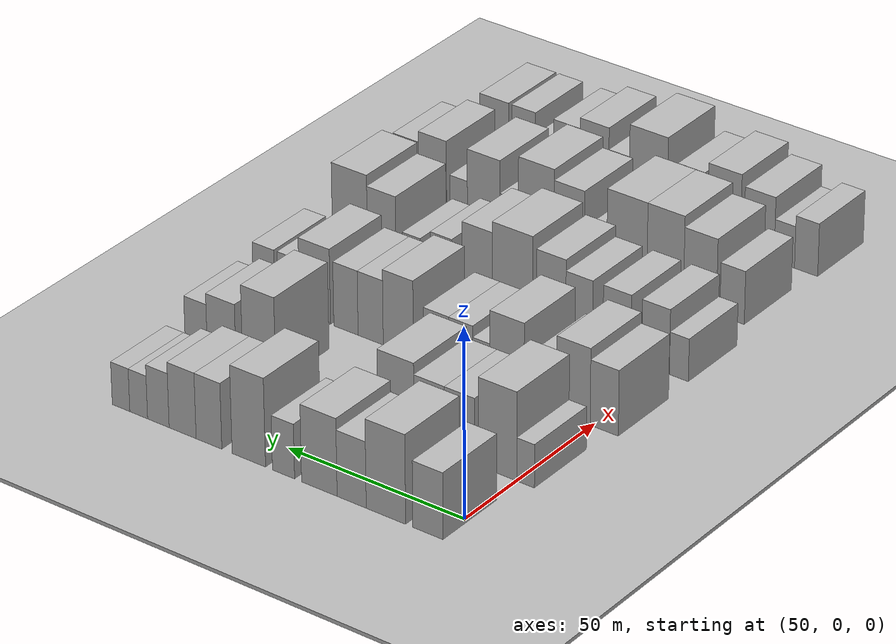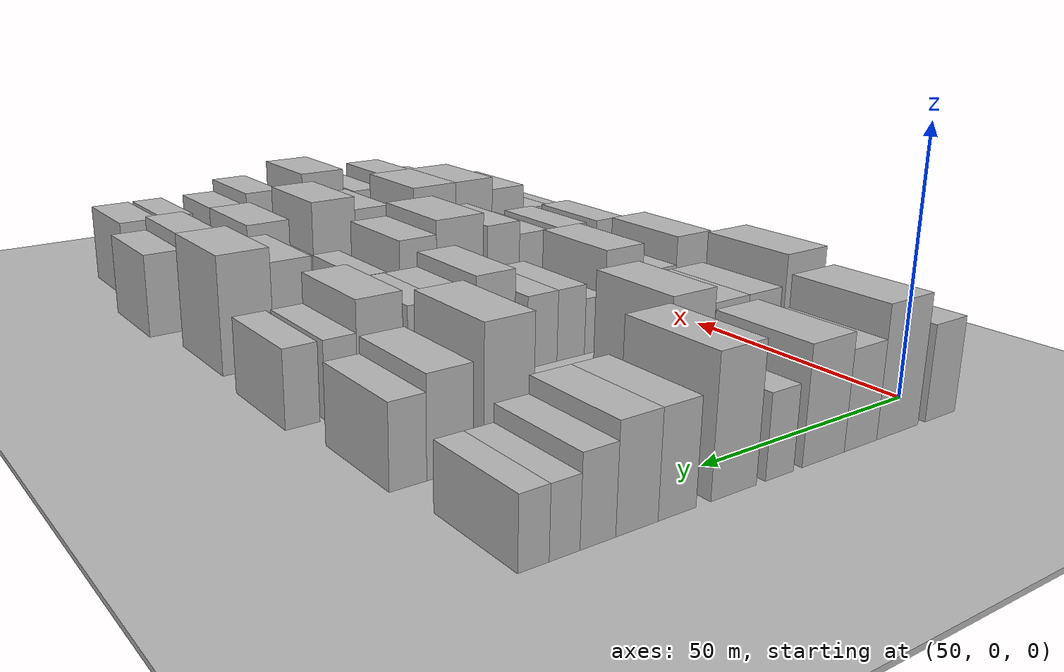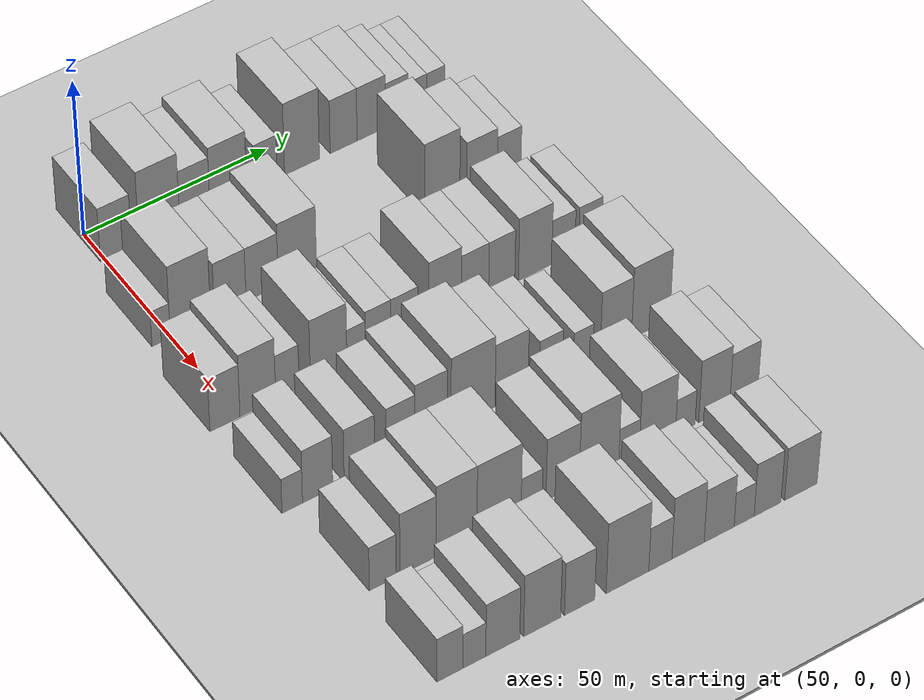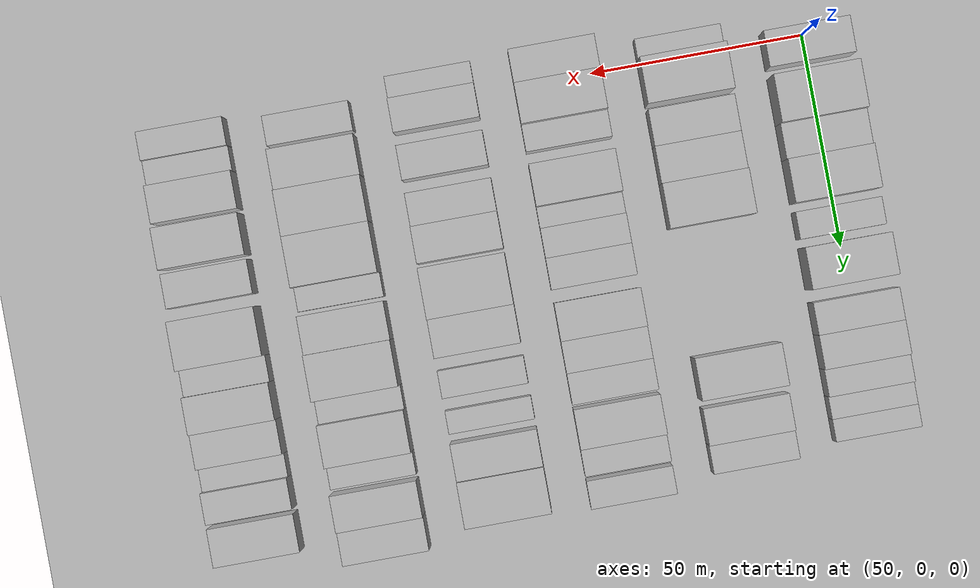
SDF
<sdf version="1.6">
 <world name="default">
  <include><name>ground_plane_1</name><uri>model://HANNAS_ground_plane</uri></include>
  <include>
   <name>ground_plane_2</name>
   <uri>model://HANNAS_ground_plane</uri>
   <pose>100 0 0  0 0 0</pose>
  </include>
  <model name="building_56">
   <static>1</static>
   <pose>50.0000 2.6912 0 0.000000 0.000000 0.000000</pose>
   <link name="link">
    <pose>0 0 9.00 0 0 0</pose>
    <collision name="collision"><geometry><box><size>20.0000 8.4081 18.0000</size></box></geometry></collision>
    <visual name="visual">
     <cast_shadows>0</cast_shadows>
     <geometry><box><size>20.0000 8.4081 18.0000</size></box></geometry>
     <material>
      <script>
       <uri>model://HANNAS_wall/materials/scripts</uri>
       <uri>model://HANNAS_wall/materials/textures</uri>
       <name>vrc/HANNAS_wall</name>
      </script>
     </material>
    </visual>
   </link>
  </model>
  <model name="building_57">
   <static>1</static>
   <pose>50.0000 14.4194 0 0.000000 0.000000 0.000000</pose>
   <link name="link">
    <pose>0 0 12.00 0 0 0</pose>
    <collision name="collision"><geometry><box><size>20.0000 11.0483 24.0000</size></box></geometry></collision>
    <visual name="visual">
     <cast_shadows>0</cast_shadows>
     <geometry><box><size>20.0000 11.0483 24.0000</size></box></geometry>
     <material>
      <script>
       <uri>model://HANNAS_wall/materials/scripts</uri>
       <uri>model://HANNAS_wall/materials/textures</uri>
       <name>vrc/HANNAS_wall</name>
      </script>
     </material>
    </visual>
   </link>
  </model>
  <model name="building_58">
   <static>1</static>
   <pose>50.0000 24.0568 0 0.000000 0.000000 0.000000</pose>
   <link name="link">
    <pose>0 0 9.00 0 0 0</pose>
    <collision name="collision"><geometry><box><size>20.0000 8.2267 18.0000</size></box></geometry></collision>
    <visual name="visual">
     <cast_shadows>0</cast_shadows>
     <geometry><box><size>20.0000 8.2267 18.0000</size></box></geometry>
     <material>
      <script>
       <uri>model://HANNAS_wall/materials/scripts</uri>
       <uri>model://HANNAS_wall/materials/textures</uri>
       <name>vrc/HANNAS_wall</name>
      </script>
     </material>
    </visual>
   </link>
  </model>
  <model name="building_59">
   <static>1</static>
   <pose>50.0000 33.2334 0 0.000000 0.000000 0.000000</pose>
   <link name="link">
    <pose>0 0 10.50 0 0 0</pose>
    <collision name="collision"><geometry><box><size>20.0000 10.1264 21.0000</size></box></geometry></collision>
    <visual name="visual">
     <cast_shadows>0</cast_shadows>
     <geometry><box><size>20.0000 10.1264 21.0000</size></box></geometry>
     <material>
      <script>
       <uri>model://HANNAS_wall/materials/scripts</uri>
       <uri>model://HANNAS_wall/materials/textures</uri>
       <name>vrc/HANNAS_wall</name>
      </script>
     </material>
    </visual>
   </link>
  </model>
  <model name="building_60">
   <static>1</static>
   <pose>50.0000 43.4726 0 0.000000 0.000000 0.000000</pose>
   <link name="link">
    <pose>0 0 7.50 0 0 0</pose>
    <collision name="collision"><geometry><box><size>20.0000 6.3521 15.0000</size></box></geometry></collision>
    <visual name="visual">
     <cast_shadows>0</cast_shadows>
     <geometry><box><size>20.0000 6.3521 15.0000</size></box></geometry>
     <material>
      <script>
       <uri>model://HANNAS_wall/materials/scripts</uri>
       <uri>model://HANNAS_wall/materials/textures</uri>
       <name>vrc/HANNAS_wall</name>
      </script>
     </material>
    </visual>
   </link>
  </model>
  <model name="building_61">
   <static>1</static>
   <pose>50.0000 53.4986 0 0.000000 0.000000 0.000000</pose>
   <link name="link">
    <pose>0 0 12.00 0 0 0</pose>
    <collision name="collision"><geometry><box><size>20.0000 9.6999 24.0000</size></box></geometry></collision>
    <visual name="visual">
     <cast_shadows>0</cast_shadows>
     <geometry><box><size>20.0000 9.6999 24.0000</size></box></geometry>
     <material>
      <script>
       <uri>model://HANNAS_wall/materials/scripts</uri>
       <uri>model://HANNAS_wall/materials/textures</uri>
       <name>vrc/HANNAS_wall</name>
      </script>
     </material>
    </visual>
   </link>
  </model>
  <model name="building_62">
   <static>1</static>
   <pose>50.0000 65.1125 0 0.000000 0.000000 0.000000</pose>
   <link name="link">
    <pose>0 0 9.00 0 0 0</pose>
    <collision name="collision"><geometry><box><size>20.0000 7.5279 18.0000</size></box></geometry></collision>
    <visual name="visual">
     <cast_shadows>0</cast_shadows>
     <geometry><box><size>20.0000 7.5279 18.0000</size></box></geometry>
     <material>
      <script>
       <uri>model://HANNAS_wall/materials/scripts</uri>
       <uri>model://HANNAS_wall/materials/textures</uri>
       <name>vrc/HANNAS_wall</name>
      </script>
     </material>
    </visual>
   </link>
  </model>
  <model name="building_63">
   <static>1</static>
   <pose>50.0000 72.8507 0 0.000000 0.000000 0.000000</pose>
   <link name="link">
    <pose>0 0 9.00 0 0 0</pose>
    <collision name="collision"><geometry><box><size>20.0000 7.9485 18.0000</size></box></geometry></collision>
    <visual name="visual">
     <cast_shadows>0</cast_shadows>
     <geometry><box><size>20.0000 7.9485 18.0000</size></box></geometry>
     <material>
      <script>
       <uri>model://HANNAS_wall/materials/scripts</uri>
       <uri>model://HANNAS_wall/materials/textures</uri>
       <name>vrc/HANNAS_wall</name>
      </script>
     </material>
    </visual>
   </link>
  </model>
  <model name="building_64">
   <static>1</static>
   <pose>50.0000 80.0263 0 0.000000 0.000000 0.000000</pose>
   <link name="link">
    <pose>0 0 7.50 0 0 0</pose>
    <collision name="collision"><geometry><box><size>20.0000 6.4027 15.0000</size></box></geometry></collision>
    <visual name="visual">
     <cast_shadows>0</cast_shadows>
     <geometry><box><size>20.0000 6.4027 15.0000</size></box></geometry>
     <material>
      <script>
       <uri>model://HANNAS_wall/materials/scripts</uri>
       <uri>model://HANNAS_wall/materials/textures</uri>
       <name>vrc/HANNAS_wall</name>
      </script>
     </material>
    </visual>
   </link>
  </model>
  <model name="building_65">
   <static>1</static>
   <pose>50.0000 85.8748 0 0.000000 0.000000 0.000000</pose>
   <link name="link">
    <pose>0 0 6.00 0 0 0</pose>
    <collision name="collision"><geometry><box><size>20.0000 5.2944 12.0000</size></box></geometry></collision>
    <visual name="visual">
     <cast_shadows>0</cast_shadows>
     <geometry><box><size>20.0000 5.2944 12.0000</size></box></geometry>
     <material>
      <script>
       <uri>model://HANNAS_wall/materials/scripts</uri>
       <uri>model://HANNAS_wall/materials/textures</uri>
       <name>vrc/HANNAS_wall</name>
      </script>
     </material>
    </visual>
   </link>
  </model>
  <model name="building_66">
   <static>1</static>
   <pose>50.0000 91.1388 0 0.000000 0.000000 0.000000</pose>
   <link name="link">
    <pose>0 0 6.00 0 0 0</pose>
    <collision name="collision"><geometry><box><size>20.0000 5.2335 12.0000</size></box></geometry></collision>
    <visual name="visual">
     <cast_shadows>0</cast_shadows>
     <geometry><box><size>20.0000 5.2335 12.0000</size></box></geometry>
     <material>
      <script>
       <uri>model://HANNAS_wall/materials/scripts</uri>
       <uri>model://HANNAS_wall/materials/textures</uri>
       <name>vrc/HANNAS_wall</name>
      </script>
     </material>
    </visual>
   </link>
  </model>
  <model name="building_170">
   <static>1</static>
   <pose>79.0000 -2.8631 0 0.000000 0.000000 0.000000</pose>
   <link name="link">
    <pose>0 0 6.00 0 0 0</pose>
    <collision name="collision"><geometry><box><size>20.0000 4.8949 12.0000</size></box></geometry></collision>
    <visual name="visual">
     <cast_shadows>0</cast_shadows>
     <geometry><box><size>20.0000 4.8949 12.0000</size></box></geometry>
     <material>
      <script>
       <uri>model://HANNAS_wall/materials/scripts</uri>
       <uri>model://HANNAS_wall/materials/textures</uri>
       <name>vrc/HANNAS_wall</name>
      </script>
     </material>
    </visual>
   </link>
  </model>
  <model name="building_171">
   <static>1</static>
   <pose>79.0000 4.9696 0 0.000000 0.000000 0.000000</pose>
   <link name="link">
    <pose>0 0 12.00 0 0 0</pose>
    <collision name="collision"><geometry><box><size>20.0000 10.7706 24.0000</size></box></geometry></collision>
    <visual name="visual">
     <cast_shadows>0</cast_shadows>
     <geometry><box><size>20.0000 10.7706 24.0000</size></box></geometry>
     <material>
      <script>
       <uri>model://HANNAS_wall/materials/scripts</uri>
       <uri>model://HANNAS_wall/materials/textures</uri>
       <name>vrc/HANNAS_wall</name>
      </script>
     </material>
    </visual>
   </link>
  </model>
  <model name="building_172">
   <static>1</static>
   <pose>79.0000 15.6167 0 0.000000 0.000000 0.000000</pose>
   <link name="link">
    <pose>0 0 9.00 0 0 0</pose>
    <collision name="collision"><geometry><box><size>20.0000 8.5237 18.0000</size></box></geometry></collision>
    <visual name="visual">
     <cast_shadows>0</cast_shadows>
     <geometry><box><size>20.0000 8.5237 18.0000</size></box></geometry>
     <material>
      <script>
       <uri>model://HANNAS_wall/materials/scripts</uri>
       <uri>model://HANNAS_wall/materials/textures</uri>
       <name>vrc/HANNAS_wall</name>
      </script>
     </material>
    </visual>
   </link>
  </model>
  <model name="building_173">
   <static>1</static>
   <pose>79.0000 24.2180 0 0.000000 0.000000 0.000000</pose>
   <link name="link">
    <pose>0 0 9.00 0 0 0</pose>
    <collision name="collision"><geometry><box><size>20.0000 8.6790 18.0000</size></box></geometry></collision>
    <visual name="visual">
     <cast_shadows>0</cast_shadows>
     <geometry><box><size>20.0000 8.6790 18.0000</size></box></geometry>
     <material>
      <script>
       <uri>model://HANNAS_wall/materials/scripts</uri>
       <uri>model://HANNAS_wall/materials/textures</uri>
       <name>vrc/HANNAS_wall</name>
      </script>
     </material>
    </visual>
   </link>
  </model>
  <model name="building_174">
   <static>1</static>
   <pose>79.0000 33.7598 0 0.000000 0.000000 0.000000</pose>
   <link name="link">
    <pose>0 0 10.50 0 0 0</pose>
    <collision name="collision"><geometry><box><size>20.0000 10.4047 21.0000</size></box></geometry></collision>
    <visual name="visual">
     <cast_shadows>0</cast_shadows>
     <geometry><box><size>20.0000 10.4047 21.0000</size></box></geometry>
     <material>
      <script>
       <uri>model://HANNAS_wall/materials/scripts</uri>
       <uri>model://HANNAS_wall/materials/textures</uri>
       <name>vrc/HANNAS_wall</name>
      </script>
     </material>
    </visual>
   </link>
  </model>
  <model name="building_175">
   <static>1</static>
   <pose>79.0000 73.6749 0 0.000000 0.000000 0.000000</pose>
   <link name="link">
    <pose>0 0 12.00 0 0 0</pose>
    <collision name="collision"><geometry><box><size>20.0000 9.8085 24.0000</size></box></geometry></collision>
    <visual name="visual">
     <cast_shadows>0</cast_shadows>
     <geometry><box><size>20.0000 9.8085 24.0000</size></box></geometry>
     <material>
      <script>
       <uri>model://HANNAS_wall/materials/scripts</uri>
       <uri>model://HANNAS_wall/materials/textures</uri>
       <name>vrc/HANNAS_wall</name>
      </script>
     </material>
    </visual>
   </link>
  </model>
  <model name="building_176">
   <static>1</static>
   <pose>79.0000 84.8668 0 0.000000 0.000000 0.000000</pose>
   <link name="link">
    <pose>0 0 9.00 0 0 0</pose>
    <collision name="collision"><geometry><box><size>20.0000 8.5753 18.0000</size></box></geometry></collision>
    <visual name="visual">
     <cast_shadows>0</cast_shadows>
     <geometry><box><size>20.0000 8.5753 18.0000</size></box></geometry>
     <material>
      <script>
       <uri>model://HANNAS_wall/materials/scripts</uri>
       <uri>model://HANNAS_wall/materials/textures</uri>
       <name>vrc/HANNAS_wall</name>
      </script>
     </material>
    </visual>
   </link>
  </model>
  <model name="building_177">
   <static>1</static>
   <pose>79.0000 92.4862 0 0.000000 0.000000 0.000000</pose>
   <link name="link">
    <pose>0 0 7.50 0 0 0</pose>
    <collision name="collision"><geometry><box><size>20.0000 6.6636 15.0000</size></box></geometry></collision>
    <visual name="visual">
     <cast_shadows>0</cast_shadows>
     <geometry><box><size>20.0000 6.6636 15.0000</size></box></geometry>
     <material>
      <script>
       <uri>model://HANNAS_wall/materials/scripts</uri>
       <uri>model://HANNAS_wall/materials/textures</uri>
       <name>vrc/HANNAS_wall</name>
      </script>
     </material>
    </visual>
   </link>
  </model>
  <model name="building_279">
   <static>1</static>
   <pose>108.0000 -3.8866 0 0.000000 0.000000 0.000000</pose>
   <link name="link">
    <pose>0 0 9.00 0 0 0</pose>
    <collision name="collision"><geometry><box><size>20.0000 7.9030 18.0000</size></box></geometry></collision>
    <visual name="visual">
     <cast_shadows>0</cast_shadows>
     <geometry><box><size>20.0000 7.9030 18.0000</size></box></geometry>
     <material>
      <script>
       <uri>model://HANNAS_wall/materials/scripts</uri>
       <uri>model://HANNAS_wall/materials/textures</uri>
       <name>vrc/HANNAS_wall</name>
      </script>
     </material>
    </visual>
   </link>
  </model>
  <model name="building_280">
   <static>1</static>
   <pose>108.0000 4.7956 0 0.000000 0.000000 0.000000</pose>
   <link name="link">
    <pose>0 0 10.50 0 0 0</pose>
    <collision name="collision"><geometry><box><size>20.0000 9.4615 21.0000</size></box></geometry></collision>
    <visual name="visual">
     <cast_shadows>0</cast_shadows>
     <geometry><box><size>20.0000 9.4615 21.0000</size></box></geometry>
     <material>
      <script>
       <uri>model://HANNAS_wall/materials/scripts</uri>
       <uri>model://HANNAS_wall/materials/textures</uri>
       <name>vrc/HANNAS_wall</name>
      </script>
     </material>
    </visual>
   </link>
  </model>
  <model name="building_281">
   <static>1</static>
   <pose>108.0000 12.6495 0 0.000000 0.000000 0.000000</pose>
   <link name="link">
    <pose>0 0 7.50 0 0 0</pose>
    <collision name="collision"><geometry><box><size>20.0000 6.2461 15.0000</size></box></geometry></collision>
    <visual name="visual">
     <cast_shadows>0</cast_shadows>
     <geometry><box><size>20.0000 6.2461 15.0000</size></box></geometry>
     <material>
      <script>
       <uri>model://HANNAS_wall/materials/scripts</uri>
       <uri>model://HANNAS_wall/materials/textures</uri>
       <name>vrc/HANNAS_wall</name>
      </script>
     </material>
    </visual>
   </link>
  </model>
  <model name="building_282">
   <static>1</static>
   <pose>108.0000 23.6721 0 0.000000 0.000000 0.000000</pose>
   <link name="link">
    <pose>0 0 10.50 0 0 0</pose>
    <collision name="collision"><geometry><box><size>20.0000 9.7992 21.0000</size></box></geometry></collision>
    <visual name="visual">
     <cast_shadows>0</cast_shadows>
     <geometry><box><size>20.0000 9.7992 21.0000</size></box></geometry>
     <material>
      <script>
       <uri>model://HANNAS_wall/materials/scripts</uri>
       <uri>model://HANNAS_wall/materials/textures</uri>
       <name>vrc/HANNAS_wall</name>
      </script>
     </material>
    </visual>
   </link>
  </model>
  <model name="building_283">
   <static>1</static>
   <pose>108.0000 31.0412 0 0.000000 0.000000 0.000000</pose>
   <link name="link">
    <pose>0 0 6.00 0 0 0</pose>
    <collision name="collision"><geometry><box><size>20.0000 4.9390 12.0000</size></box></geometry></collision>
    <visual name="visual">
     <cast_shadows>0</cast_shadows>
     <geometry><box><size>20.0000 4.9390 12.0000</size></box></geometry>
     <material>
      <script>
       <uri>model://HANNAS_wall/materials/scripts</uri>
       <uri>model://HANNAS_wall/materials/textures</uri>
       <name>vrc/HANNAS_wall</name>
      </script>
     </material>
    </visual>
   </link>
  </model>
  <model name="building_284">
   <static>1</static>
   <pose>108.0000 36.9808 0 0.000000 0.000000 0.000000</pose>
   <link name="link">
    <pose>0 0 7.50 0 0 0</pose>
    <collision name="collision"><geometry><box><size>20.0000 6.9402 15.0000</size></box></geometry></collision>
    <visual name="visual">
     <cast_shadows>0</cast_shadows>
     <geometry><box><size>20.0000 6.9402 15.0000</size></box></geometry>
     <material>
      <script>
       <uri>model://HANNAS_wall/materials/scripts</uri>
       <uri>model://HANNAS_wall/materials/textures</uri>
       <name>vrc/HANNAS_wall</name>
      </script>
     </material>
    </visual>
   </link>
  </model>
  <model name="building_285">
   <static>1</static>
   <pose>108.0000 44.1269 0 0.000000 0.000000 0.000000</pose>
   <link name="link">
    <pose>0 0 7.50 0 0 0</pose>
    <collision name="collision"><geometry><box><size>20.0000 7.3521 15.0000</size></box></geometry></collision>
    <visual name="visual">
     <cast_shadows>0</cast_shadows>
     <geometry><box><size>20.0000 7.3521 15.0000</size></box></geometry>
     <material>
      <script>
       <uri>model://HANNAS_wall/materials/scripts</uri>
       <uri>model://HANNAS_wall/materials/textures</uri>
       <name>vrc/HANNAS_wall</name>
      </script>
     </material>
    </visual>
   </link>
  </model>
  <model name="building_286">
   <static>1</static>
   <pose>108.0000 55.2496 0 0.000000 0.000000 0.000000</pose>
   <link name="link">
    <pose>0 0 10.50 0 0 0</pose>
    <collision name="collision"><geometry><box><size>20.0000 8.8934 21.0000</size></box></geometry></collision>
    <visual name="visual">
     <cast_shadows>0</cast_shadows>
     <geometry><box><size>20.0000 8.8934 21.0000</size></box></geometry>
     <material>
      <script>
       <uri>model://HANNAS_wall/materials/scripts</uri>
       <uri>model://HANNAS_wall/materials/textures</uri>
       <name>vrc/HANNAS_wall</name>
      </script>
     </material>
    </visual>
   </link>
  </model>
  <model name="building_287">
   <static>1</static>
   <pose>108.0000 63.4275 0 0.000000 0.000000 0.000000</pose>
   <link name="link">
    <pose>0 0 9.00 0 0 0</pose>
    <collision name="collision"><geometry><box><size>20.0000 7.4624 18.0000</size></box></geometry></collision>
    <visual name="visual">
     <cast_shadows>0</cast_shadows>
     <geometry><box><size>20.0000 7.4624 18.0000</size></box></geometry>
     <material>
      <script>
       <uri>model://HANNAS_wall/materials/scripts</uri>
       <uri>model://HANNAS_wall/materials/textures</uri>
       <name>vrc/HANNAS_wall</name>
      </script>
     </material>
    </visual>
   </link>
  </model>
  <model name="building_288">
   <static>1</static>
   <pose>108.0000 70.7739 0 0.000000 0.000000 0.000000</pose>
   <link name="link">
    <pose>0 0 9.00 0 0 0</pose>
    <collision name="collision"><geometry><box><size>20.0000 7.2304 18.0000</size></box></geometry></collision>
    <visual name="visual">
     <cast_shadows>0</cast_shadows>
     <geometry><box><size>20.0000 7.2304 18.0000</size></box></geometry>
     <material>
      <script>
       <uri>model://HANNAS_wall/materials/scripts</uri>
       <uri>model://HANNAS_wall/materials/textures</uri>
       <name>vrc/HANNAS_wall</name>
      </script>
     </material>
    </visual>
   </link>
  </model>
  <model name="building_289">
   <static>1</static>
   <pose>108.0000 80.0324 0 0.000000 0.000000 0.000000</pose>
   <link name="link">
    <pose>0 0 10.50 0 0 0</pose>
    <collision name="collision"><geometry><box><size>20.0000 9.2866 21.0000</size></box></geometry></collision>
    <visual name="visual">
     <cast_shadows>0</cast_shadows>
     <geometry><box><size>20.0000 9.2866 21.0000</size></box></geometry>
     <material>
      <script>
       <uri>model://HANNAS_wall/materials/scripts</uri>
       <uri>model://HANNAS_wall/materials/textures</uri>
       <name>vrc/HANNAS_wall</name>
      </script>
     </material>
    </visual>
   </link>
  </model>
  <model name="building_290">
   <static>1</static>
   <pose>108.0000 87.9044 0 0.000000 0.000000 0.000000</pose>
   <link name="link">
    <pose>0 0 7.50 0 0 0</pose>
    <collision name="collision"><geometry><box><size>20.0000 6.4575 15.0000</size></box></geometry></collision>
    <visual name="visual">
     <cast_shadows>0</cast_shadows>
     <geometry><box><size>20.0000 6.4575 15.0000</size></box></geometry>
     <material>
      <script>
       <uri>model://HANNAS_wall/materials/scripts</uri>
       <uri>model://HANNAS_wall/materials/textures</uri>
       <name>vrc/HANNAS_wall</name>
      </script>
     </material>
    </visual>
   </link>
  </model>
  <model name="building_291">
   <static>1</static>
   <pose>108.0000 95.4033 0 0.000000 0.000000 0.000000</pose>
   <link name="link">
    <pose>0 0 7.50 0 0 0</pose>
    <collision name="collision"><geometry><box><size>20.0000 6.5405 15.0000</size></box></geometry></collision>
    <visual name="visual">
     <cast_shadows>0</cast_shadows>
     <geometry><box><size>20.0000 6.5405 15.0000</size></box></geometry>
     <material>
      <script>
       <uri>model://HANNAS_wall/materials/scripts</uri>
       <uri>model://HANNAS_wall/materials/textures</uri>
       <name>vrc/HANNAS_wall</name>
      </script>
     </material>
    </visual>
   </link>
  </model>
  <model name="building_390">
   <static>1</static>
   <pose>137.0000 -4.5068 0 0.000000 0.000000 0.000000</pose>
   <link name="link">
    <pose>0 0 6.00 0 0 0</pose>
    <collision name="collision"><geometry><box><size>20.0000 5.3622 12.0000</size></box></geometry></collision>
    <visual name="visual">
     <cast_shadows>0</cast_shadows>
     <geometry><box><size>20.0000 5.3622 12.0000</size></box></geometry>
     <material>
      <script>
       <uri>model://HANNAS_wall/materials/scripts</uri>
       <uri>model://HANNAS_wall/materials/textures</uri>
       <name>vrc/HANNAS_wall</name>
      </script>
     </material>
    </visual>
   </link>
  </model>
  <model name="building_391">
   <static>1</static>
   <pose>137.0000 2.1396 0 0.000000 0.000000 0.000000</pose>
   <link name="link">
    <pose>0 0 9.00 0 0 0</pose>
    <collision name="collision"><geometry><box><size>20.0000 7.9306 18.0000</size></box></geometry></collision>
    <visual name="visual">
     <cast_shadows>0</cast_shadows>
     <geometry><box><size>20.0000 7.9306 18.0000</size></box></geometry>
     <material>
      <script>
       <uri>model://HANNAS_wall/materials/scripts</uri>
       <uri>model://HANNAS_wall/materials/textures</uri>
       <name>vrc/HANNAS_wall</name>
      </script>
     </material>
    </visual>
   </link>
  </model>
  <model name="building_392">
   <static>1</static>
   <pose>137.0000 13.1289 0 0.000000 0.000000 0.000000</pose>
   <link name="link">
    <pose>0 0 9.00 0 0 0</pose>
    <collision name="collision"><geometry><box><size>20.0000 8.0478 18.0000</size></box></geometry></collision>
    <visual name="visual">
     <cast_shadows>0</cast_shadows>
     <geometry><box><size>20.0000 8.0478 18.0000</size></box></geometry>
     <material>
      <script>
       <uri>model://HANNAS_wall/materials/scripts</uri>
       <uri>model://HANNAS_wall/materials/textures</uri>
       <name>vrc/HANNAS_wall</name>
      </script>
     </material>
    </visual>
   </link>
  </model>
  <model name="building_393">
   <static>1</static>
   <pose>137.0000 24.0230 0 0.000000 0.000000 0.000000</pose>
   <link name="link">
    <pose>0 0 9.00 0 0 0</pose>
    <collision name="collision"><geometry><box><size>20.0000 7.7405 18.0000</size></box></geometry></collision>
    <visual name="visual">
     <cast_shadows>0</cast_shadows>
     <geometry><box><size>20.0000 7.7405 18.0000</size></box></geometry>
     <material>
      <script>
       <uri>model://HANNAS_wall/materials/scripts</uri>
       <uri>model://HANNAS_wall/materials/textures</uri>
       <name>vrc/HANNAS_wall</name>
      </script>
     </material>
    </visual>
   </link>
  </model>
  <model name="building_394">
   <static>1</static>
   <pose>137.0000 32.1843 0 0.000000 0.000000 0.000000</pose>
   <link name="link">
    <pose>0 0 10.50 0 0 0</pose>
    <collision name="collision"><geometry><box><size>20.0000 8.5821 21.0000</size></box></geometry></collision>
    <visual name="visual">
     <cast_shadows>0</cast_shadows>
     <geometry><box><size>20.0000 8.5821 21.0000</size></box></geometry>
     <material>
      <script>
       <uri>model://HANNAS_wall/materials/scripts</uri>
       <uri>model://HANNAS_wall/materials/textures</uri>
       <name>vrc/HANNAS_wall</name>
      </script>
     </material>
    </visual>
   </link>
  </model>
  <model name="building_395">
   <static>1</static>
   <pose>137.0000 43.4155 0 0.000000 0.000000 0.000000</pose>
   <link name="link">
    <pose>0 0 12.00 0 0 0</pose>
    <collision name="collision"><geometry><box><size>20.0000 11.8804 24.0000</size></box></geometry></collision>
    <visual name="visual">
     <cast_shadows>0</cast_shadows>
     <geometry><box><size>20.0000 11.8804 24.0000</size></box></geometry>
     <material>
      <script>
       <uri>model://HANNAS_wall/materials/scripts</uri>
       <uri>model://HANNAS_wall/materials/textures</uri>
       <name>vrc/HANNAS_wall</name>
      </script>
     </material>
    </visual>
   </link>
  </model>
  <model name="building_396">
   <static>1</static>
   <pose>137.0000 53.8266 0 0.000000 0.000000 0.000000</pose>
   <link name="link">
    <pose>0 0 10.50 0 0 0</pose>
    <collision name="collision"><geometry><box><size>20.0000 8.9419 21.0000</size></box></geometry></collision>
    <visual name="visual">
     <cast_shadows>0</cast_shadows>
     <geometry><box><size>20.0000 8.9419 21.0000</size></box></geometry>
     <material>
      <script>
       <uri>model://HANNAS_wall/materials/scripts</uri>
       <uri>model://HANNAS_wall/materials/textures</uri>
       <name>vrc/HANNAS_wall</name>
      </script>
     </material>
    </visual>
   </link>
  </model>
  <model name="building_397">
   <static>1</static>
   <pose>137.0000 64.5083 0 0.000000 0.000000 0.000000</pose>
   <link name="link">
    <pose>0 0 7.50 0 0 0</pose>
    <collision name="collision"><geometry><box><size>20.0000 6.4214 15.0000</size></box></geometry></collision>
    <visual name="visual">
     <cast_shadows>0</cast_shadows>
     <geometry><box><size>20.0000 6.4214 15.0000</size></box></geometry>
     <material>
      <script>
       <uri>model://HANNAS_wall/materials/scripts</uri>
       <uri>model://HANNAS_wall/materials/textures</uri>
       <name>vrc/HANNAS_wall</name>
      </script>
     </material>
    </visual>
   </link>
  </model>
  <model name="building_398">
   <static>1</static>
   <pose>137.0000 73.4029 0 0.000000 0.000000 0.000000</pose>
   <link name="link">
    <pose>0 0 6.00 0 0 0</pose>
    <collision name="collision"><geometry><box><size>20.0000 5.3677 12.0000</size></box></geometry></collision>
    <visual name="visual">
     <cast_shadows>0</cast_shadows>
     <geometry><box><size>20.0000 5.3677 12.0000</size></box></geometry>
     <material>
      <script>
       <uri>model://HANNAS_wall/materials/scripts</uri>
       <uri>model://HANNAS_wall/materials/textures</uri>
       <name>vrc/HANNAS_wall</name>
      </script>
     </material>
    </visual>
   </link>
  </model>
  <model name="building_399">
   <static>1</static>
   <pose>137.0000 82.4036 0 0.000000 0.000000 0.000000</pose>
   <link name="link">
    <pose>0 0 10.50 0 0 0</pose>
    <collision name="collision"><geometry><box><size>20.0000 8.6338 21.0000</size></box></geometry></collision>
    <visual name="visual">
     <cast_shadows>0</cast_shadows>
     <geometry><box><size>20.0000 8.6338 21.0000</size></box></geometry>
     <material>
      <script>
       <uri>model://HANNAS_wall/materials/scripts</uri>
       <uri>model://HANNAS_wall/materials/textures</uri>
       <name>vrc/HANNAS_wall</name>
      </script>
     </material>
    </visual>
   </link>
  </model>
  <model name="building_400">
   <static>1</static>
   <pose>137.0000 92.0606 0 0.000000 0.000000 0.000000</pose>
   <link name="link">
    <pose>0 0 12.00 0 0 0</pose>
    <collision name="collision"><geometry><box><size>20.0000 10.6801 24.0000</size></box></geometry></collision>
    <visual name="visual">
     <cast_shadows>0</cast_shadows>
     <geometry><box><size>20.0000 10.6801 24.0000</size></box></geometry>
     <material>
      <script>
       <uri>model://HANNAS_wall/materials/scripts</uri>
       <uri>model://HANNAS_wall/materials/textures</uri>
       <name>vrc/HANNAS_wall</name>
      </script>
     </material>
    </visual>
   </link>
  </model>
  <model name="building_509">
   <static>1</static>
   <pose>166.0000 0.3245 0 0.000000 0.000000 0.000000</pose>
   <link name="link">
    <pose>0 0 7.50 0 0 0</pose>
    <collision name="collision"><geometry><box><size>20.0000 6.9780 15.0000</size></box></geometry></collision>
    <visual name="visual">
     <cast_shadows>0</cast_shadows>
     <geometry><box><size>20.0000 6.9780 15.0000</size></box></geometry>
     <material>
      <script>
       <uri>model://HANNAS_wall/materials/scripts</uri>
       <uri>model://HANNAS_wall/materials/textures</uri>
       <name>vrc/HANNAS_wall</name>
      </script>
     </material>
    </visual>
   </link>
  </model>
  <model name="building_510">
   <static>1</static>
   <pose>166.0000 9.5577 0 0.000000 0.000000 0.000000</pose>
   <link name="link">
    <pose>0 0 10.50 0 0 0</pose>
    <collision name="collision"><geometry><box><size>20.0000 9.4884 21.0000</size></box></geometry></collision>
    <visual name="visual">
     <cast_shadows>0</cast_shadows>
     <geometry><box><size>20.0000 9.4884 21.0000</size></box></geometry>
     <material>
      <script>
       <uri>model://HANNAS_wall/materials/scripts</uri>
       <uri>model://HANNAS_wall/materials/textures</uri>
       <name>vrc/HANNAS_wall</name>
      </script>
     </material>
    </visual>
   </link>
  </model>
  <model name="building_511">
   <static>1</static>
   <pose>166.0000 19.6317 0 0.000000 0.000000 0.000000</pose>
   <link name="link">
    <pose>0 0 12.00 0 0 0</pose>
    <collision name="collision"><geometry><box><size>20.0000 10.6597 24.0000</size></box></geometry></collision>
    <visual name="visual">
     <cast_shadows>0</cast_shadows>
     <geometry><box><size>20.0000 10.6597 24.0000</size></box></geometry>
     <material>
      <script>
       <uri>model://HANNAS_wall/materials/scripts</uri>
       <uri>model://HANNAS_wall/materials/textures</uri>
       <name>vrc/HANNAS_wall</name>
      </script>
     </material>
    </visual>
   </link>
  </model>
  <model name="building_512">
   <static>1</static>
   <pose>166.0000 30.8325 0 0.000000 0.000000 0.000000</pose>
   <link name="link">
    <pose>0 0 12.00 0 0 0</pose>
    <collision name="collision"><geometry><box><size>20.0000 11.7417 24.0000</size></box></geometry></collision>
    <visual name="visual">
     <cast_shadows>0</cast_shadows>
     <geometry><box><size>20.0000 11.7417 24.0000</size></box></geometry>
     <material>
      <script>
       <uri>model://HANNAS_wall/materials/scripts</uri>
       <uri>model://HANNAS_wall/materials/textures</uri>
       <name>vrc/HANNAS_wall</name>
      </script>
     </material>
    </visual>
   </link>
  </model>
  <model name="building_513">
   <static>1</static>
   <pose>166.0000 39.5112 0 0.000000 0.000000 0.000000</pose>
   <link name="link">
    <pose>0 0 6.00 0 0 0</pose>
    <collision name="collision"><geometry><box><size>20.0000 5.6158 12.0000</size></box></geometry></collision>
    <visual name="visual">
     <cast_shadows>0</cast_shadows>
     <geometry><box><size>20.0000 5.6158 12.0000</size></box></geometry>
     <material>
      <script>
       <uri>model://HANNAS_wall/materials/scripts</uri>
       <uri>model://HANNAS_wall/materials/textures</uri>
       <name>vrc/HANNAS_wall</name>
      </script>
     </material>
    </visual>
   </link>
  </model>
  <model name="building_514">
   <static>1</static>
   <pose>166.0000 47.7817 0 0.000000 0.000000 0.000000</pose>
   <link name="link">
    <pose>0 0 10.50 0 0 0</pose>
    <collision name="collision"><geometry><box><size>20.0000 8.9251 21.0000</size></box></geometry></collision>
    <visual name="visual">
     <cast_shadows>0</cast_shadows>
     <geometry><box><size>20.0000 8.9251 21.0000</size></box></geometry>
     <material>
      <script>
       <uri>model://HANNAS_wall/materials/scripts</uri>
       <uri>model://HANNAS_wall/materials/textures</uri>
       <name>vrc/HANNAS_wall</name>
      </script>
     </material>
    </visual>
   </link>
  </model>
  <model name="building_515">
   <static>1</static>
   <pose>166.0000 57.5900 0 0.000000 0.000000 0.000000</pose>
   <link name="link">
    <pose>0 0 12.00 0 0 0</pose>
    <collision name="collision"><geometry><box><size>20.0000 10.6915 24.0000</size></box></geometry></collision>
    <visual name="visual">
     <cast_shadows>0</cast_shadows>
     <geometry><box><size>20.0000 10.6915 24.0000</size></box></geometry>
     <material>
      <script>
       <uri>model://HANNAS_wall/materials/scripts</uri>
       <uri>model://HANNAS_wall/materials/textures</uri>
       <name>vrc/HANNAS_wall</name>
      </script>
     </material>
    </visual>
   </link>
  </model>
  <model name="building_516">
   <static>1</static>
   <pose>166.0000 65.7139 0 0.000000 0.000000 0.000000</pose>
   <link name="link">
    <pose>0 0 6.00 0 0 0</pose>
    <collision name="collision"><geometry><box><size>20.0000 5.5563 12.0000</size></box></geometry></collision>
    <visual name="visual">
     <cast_shadows>0</cast_shadows>
     <geometry><box><size>20.0000 5.5563 12.0000</size></box></geometry>
     <material>
      <script>
       <uri>model://HANNAS_wall/materials/scripts</uri>
       <uri>model://HANNAS_wall/materials/textures</uri>
       <name>vrc/HANNAS_wall</name>
      </script>
     </material>
    </visual>
   </link>
  </model>
  <model name="building_517">
   <static>1</static>
   <pose>166.0000 73.4263 0 0.000000 0.000000 0.000000</pose>
   <link name="link">
    <pose>0 0 10.50 0 0 0</pose>
    <collision name="collision"><geometry><box><size>20.0000 9.8685 21.0000</size></box></geometry></collision>
    <visual name="visual">
     <cast_shadows>0</cast_shadows>
     <geometry><box><size>20.0000 9.8685 21.0000</size></box></geometry>
     <material>
      <script>
       <uri>model://HANNAS_wall/materials/scripts</uri>
       <uri>model://HANNAS_wall/materials/textures</uri>
       <name>vrc/HANNAS_wall</name>
      </script>
     </material>
    </visual>
   </link>
  </model>
  <model name="building_518">
   <static>1</static>
   <pose>166.0000 81.0464 0 0.000000 0.000000 0.000000</pose>
   <link name="link">
    <pose>0 0 6.00 0 0 0</pose>
    <collision name="collision"><geometry><box><size>20.0000 5.3717 12.0000</size></box></geometry></collision>
    <visual name="visual">
     <cast_shadows>0</cast_shadows>
     <geometry><box><size>20.0000 5.3717 12.0000</size></box></geometry>
     <material>
      <script>
       <uri>model://HANNAS_wall/materials/scripts</uri>
       <uri>model://HANNAS_wall/materials/textures</uri>
       <name>vrc/HANNAS_wall</name>
      </script>
     </material>
    </visual>
   </link>
  </model>
  <model name="building_519">
   <static>1</static>
   <pose>166.0000 88.9829 0 0.000000 0.000000 0.000000</pose>
   <link name="link">
    <pose>0 0 10.50 0 0 0</pose>
    <collision name="collision"><geometry><box><size>20.0000 8.5013 21.0000</size></box></geometry></collision>
    <visual name="visual">
     <cast_shadows>0</cast_shadows>
     <geometry><box><size>20.0000 8.5013 21.0000</size></box></geometry>
     <material>
      <script>
       <uri>model://HANNAS_wall/materials/scripts</uri>
       <uri>model://HANNAS_wall/materials/textures</uri>
       <name>vrc/HANNAS_wall</name>
      </script>
     </material>
    </visual>
   </link>
  </model>
  <model name="building_520">
   <static>1</static>
   <pose>166.0000 97.1421 0 0.000000 0.000000 0.000000</pose>
   <link name="link">
    <pose>0 0 9.00 0 0 0</pose>
    <collision name="collision"><geometry><box><size>20.0000 7.8173 18.0000</size></box></geometry></collision>
    <visual name="visual">
     <cast_shadows>0</cast_shadows>
     <geometry><box><size>20.0000 7.8173 18.0000</size></box></geometry>
     <material>
      <script>
       <uri>model://HANNAS_wall/materials/scripts</uri>
       <uri>model://HANNAS_wall/materials/textures</uri>
       <name>vrc/HANNAS_wall</name>
      </script>
     </material>
    </visual>
   </link>
  </model>
  <model name="building_627">
   <static>1</static>
   <pose>195.0000 -1.4193 0 0.000000 0.000000 0.000000</pose>
   <link name="link">
    <pose>0 0 7.50 0 0 0</pose>
    <collision name="collision"><geometry><box><size>20.0000 6.6721 15.0000</size></box></geometry></collision>
    <visual name="visual">
     <cast_shadows>0</cast_shadows>
     <geometry><box><size>20.0000 6.6721 15.0000</size></box></geometry>
     <material>
      <script>
       <uri>model://HANNAS_wall/materials/scripts</uri>
       <uri>model://HANNAS_wall/materials/textures</uri>
       <name>vrc/HANNAS_wall</name>
      </script>
     </material>
    </visual>
   </link>
  </model>
  <model name="building_628">
   <static>1</static>
   <pose>195.0000 4.8664 0 0.000000 0.000000 0.000000</pose>
   <link name="link">
    <pose>0 0 6.00 0 0 0</pose>
    <collision name="collision"><geometry><box><size>20.0000 5.8993 12.0000</size></box></geometry></collision>
    <visual name="visual">
     <cast_shadows>0</cast_shadows>
     <geometry><box><size>20.0000 5.8993 12.0000</size></box></geometry>
     <material>
      <script>
       <uri>model://HANNAS_wall/materials/scripts</uri>
       <uri>model://HANNAS_wall/materials/textures</uri>
       <name>vrc/HANNAS_wall</name>
      </script>
     </material>
    </visual>
   </link>
  </model>
  <model name="building_629">
   <static>1</static>
   <pose>195.0000 12.2339 0 0.000000 0.000000 0.000000</pose>
   <link name="link">
    <pose>0 0 9.00 0 0 0</pose>
    <collision name="collision"><geometry><box><size>20.0000 8.8357 18.0000</size></box></geometry></collision>
    <visual name="visual">
     <cast_shadows>0</cast_shadows>
     <geometry><box><size>20.0000 8.8357 18.0000</size></box></geometry>
     <material>
      <script>
       <uri>model://HANNAS_wall/materials/scripts</uri>
       <uri>model://HANNAS_wall/materials/textures</uri>
       <name>vrc/HANNAS_wall</name>
      </script>
     </material>
    </visual>
   </link>
  </model>
  <model name="building_630">
   <static>1</static>
   <pose>195.0000 22.4868 0 0.000000 0.000000 0.000000</pose>
   <link name="link">
    <pose>0 0 10.50 0 0 0</pose>
    <collision name="collision"><geometry><box><size>20.0000 9.6701 21.0000</size></box></geometry></collision>
    <visual name="visual">
     <cast_shadows>0</cast_shadows>
     <geometry><box><size>20.0000 9.6701 21.0000</size></box></geometry>
     <material>
      <script>
       <uri>model://HANNAS_wall/materials/scripts</uri>
       <uri>model://HANNAS_wall/materials/textures</uri>
       <name>vrc/HANNAS_wall</name>
      </script>
     </material>
    </visual>
   </link>
  </model>
  <model name="building_631">
   <static>1</static>
   <pose>195.0000 32.3008 0 0.000000 0.000000 0.000000</pose>
   <link name="link">
    <pose>0 0 9.00 0 0 0</pose>
    <collision name="collision"><geometry><box><size>20.0000 7.9580 18.0000</size></box></geometry></collision>
    <visual name="visual">
     <cast_shadows>0</cast_shadows>
     <geometry><box><size>20.0000 7.9580 18.0000</size></box></geometry>
     <material>
      <script>
       <uri>model://HANNAS_wall/materials/scripts</uri>
       <uri>model://HANNAS_wall/materials/textures</uri>
       <name>vrc/HANNAS_wall</name>
      </script>
     </material>
    </visual>
   </link>
  </model>
  <model name="building_632">
   <static>1</static>
   <pose>195.0000 44.9473 0 0.000000 0.000000 0.000000</pose>
   <link name="link">
    <pose>0 0 12.00 0 0 0</pose>
    <collision name="collision"><geometry><box><size>20.0000 11.3349 24.0000</size></box></geometry></collision>
    <visual name="visual">
     <cast_shadows>0</cast_shadows>
     <geometry><box><size>20.0000 11.3349 24.0000</size></box></geometry>
     <material>
      <script>
       <uri>model://HANNAS_wall/materials/scripts</uri>
       <uri>model://HANNAS_wall/materials/textures</uri>
       <name>vrc/HANNAS_wall</name>
      </script>
     </material>
    </visual>
   </link>
  </model>
  <model name="building_633">
   <static>1</static>
   <pose>195.0000 53.7022 0 0.000000 0.000000 0.000000</pose>
   <link name="link">
    <pose>0 0 7.50 0 0 0</pose>
    <collision name="collision"><geometry><box><size>20.0000 6.1750 15.0000</size></box></geometry></collision>
    <visual name="visual">
     <cast_shadows>0</cast_shadows>
     <geometry><box><size>20.0000 6.1750 15.0000</size></box></geometry>
     <material>
      <script>
       <uri>model://HANNAS_wall/materials/scripts</uri>
       <uri>model://HANNAS_wall/materials/textures</uri>
       <name>vrc/HANNAS_wall</name>
      </script>
     </material>
    </visual>
   </link>
  </model>
  <model name="building_634">
   <static>1</static>
   <pose>195.0000 61.1221 0 0.000000 0.000000 0.000000</pose>
   <link name="link">
    <pose>0 0 10.50 0 0 0</pose>
    <collision name="collision"><geometry><box><size>20.0000 8.6648 21.0000</size></box></geometry></collision>
    <visual name="visual">
     <cast_shadows>0</cast_shadows>
     <geometry><box><size>20.0000 8.6648 21.0000</size></box></geometry>
     <material>
      <script>
       <uri>model://HANNAS_wall/materials/scripts</uri>
       <uri>model://HANNAS_wall/materials/textures</uri>
       <name>vrc/HANNAS_wall</name>
      </script>
     </material>
    </visual>
   </link>
  </model>
  <model name="building_635">
   <static>1</static>
   <pose>195.0000 69.4894 0 0.000000 0.000000 0.000000</pose>
   <link name="link">
    <pose>0 0 9.00 0 0 0</pose>
    <collision name="collision"><geometry><box><size>20.0000 8.0698 18.0000</size></box></geometry></collision>
    <visual name="visual">
     <cast_shadows>0</cast_shadows>
     <geometry><box><size>20.0000 8.0698 18.0000</size></box></geometry>
     <material>
      <script>
       <uri>model://HANNAS_wall/materials/scripts</uri>
       <uri>model://HANNAS_wall/materials/textures</uri>
       <name>vrc/HANNAS_wall</name>
      </script>
     </material>
    </visual>
   </link>
  </model>
  <model name="building_636">
   <static>1</static>
   <pose>195.0000 76.2481 0 0.000000 0.000000 0.000000</pose>
   <link name="link">
    <pose>0 0 6.00 0 0 0</pose>
    <collision name="collision"><geometry><box><size>20.0000 5.4477 12.0000</size></box></geometry></collision>
    <visual name="visual">
     <cast_shadows>0</cast_shadows>
     <geometry><box><size>20.0000 5.4477 12.0000</size></box></geometry>
     <material>
      <script>
       <uri>model://HANNAS_wall/materials/scripts</uri>
       <uri>model://HANNAS_wall/materials/textures</uri>
       <name>vrc/HANNAS_wall</name>
      </script>
     </material>
    </visual>
   </link>
  </model>
  <model name="building_637">
   <static>1</static>
   <pose>195.0000 82.6129 0 0.000000 0.000000 0.000000</pose>
   <link name="link">
    <pose>0 0 9.00 0 0 0</pose>
    <collision name="collision"><geometry><box><size>20.0000 7.2817 18.0000</size></box></geometry></collision>
    <visual name="visual">
     <cast_shadows>0</cast_shadows>
     <geometry><box><size>20.0000 7.2817 18.0000</size></box></geometry>
     <material>
      <script>
       <uri>model://HANNAS_wall/materials/scripts</uri>
       <uri>model://HANNAS_wall/materials/textures</uri>
       <name>vrc/HANNAS_wall</name>
      </script>
     </material>
    </visual>
   </link>
  </model>
  <model name="building_638">
   <static>1</static>
   <pose>195.0000 91.7001 0 0.000000 0.000000 0.000000</pose>
   <link name="link">
    <pose>0 0 9.00 0 0 0</pose>
    <collision name="collision"><geometry><box><size>20.0000 8.8927 18.0000</size></box></geometry></collision>
    <visual name="visual">
     <cast_shadows>0</cast_shadows>
     <geometry><box><size>20.0000 8.8927 18.0000</size></box></geometry>
     <material>
      <script>
       <uri>model://HANNAS_wall/materials/scripts</uri>
       <uri>model://HANNAS_wall/materials/textures</uri>
       <name>vrc/HANNAS_wall</name>
      </script>
     </material>
    </visual>
   </link>
  </model>
 </world>
</sdf>
